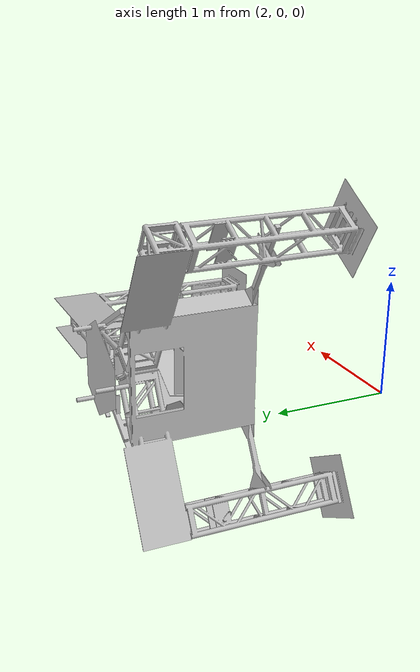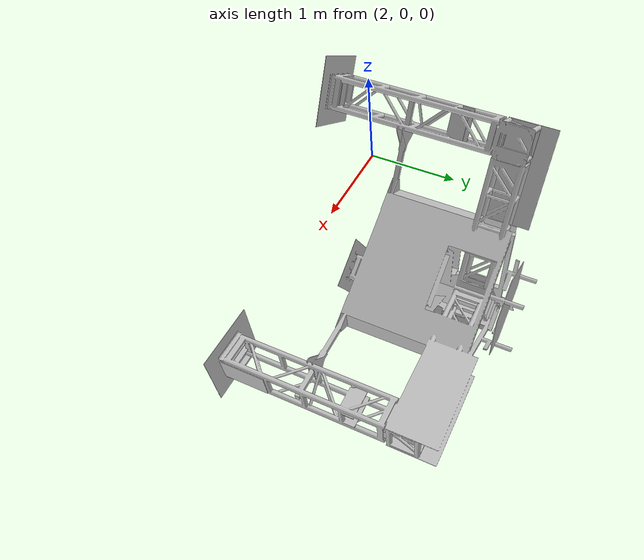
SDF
<?xml version="1.0" encoding="utf-8"?>
<sdf version="1.5">
  <model name="StageDF">
    <pose>0 0 0 0 0 0</pose>

    <link name="Body">
      <gravity>1</gravity>
      <self_collide>0</self_collide>
      <pose>3.41866966331912 1.28555950831927 -4.49039309301697E-05 0 0 0</pose>
      <must_be_base_link>1</must_be_base_link>
      <velocity_decay>
        <linear>0</linear>
        <angular>0</angular>
      </velocity_decay>
      <inertial>
        <mass>229.201132019243</mass>
        <pose>0 0 0 0 0 0</pose>
        <inertia>
          <ixx>123.388078535741</ixx>
          <ixy>6.8275201419122</ixy>
          <ixz>0.0354480194593931</ixz>
          <iyy>220.472965126754</iyy>
          <iyz>0.0547666220662019</iyz>
          <izz>136.817722560262</izz>
        </inertia>
      </inertial>
      <collision name="Body_collision">
        <pose>-3.41866966331912 -1.28555950831927 4.49039309301697E-05 0 0 0</pose>
        <geometry>
          <mesh>
            <scale>1 1 1</scale>
            <uri>model://StageDF/meshes/Body_col.STL</uri>
          </mesh>
        </geometry>
        <surface>
          <contact>
            <ode />
          </contact>
          <friction>
            <ode>
              <mu>0</mu>
              <mu2>0</mu2>
            </ode>
          </friction>
        </surface>
      </collision>
      <visual name="Body_visual">
        <pose>-3.41866966331912 -1.28555950831927 4.49039309301697E-05 0 0 0</pose>
        <material>
          <ambient>0.752941176470588 0.752941176470588 0.752941176470588 1</ambient>
          <diffuse>0.752941176470588 0.752941176470588 0.752941176470588 1</diffuse>
        </material>
        <geometry>
          <mesh>
            <scale>1 1 1</scale>
            <uri>model://StageDF/meshes/Body.STL</uri>
          </mesh>
        </geometry>
      </visual>
    </link>
     <joint name="Field-World" type="fixed">
      <parent>world</parent>
      <child>Body</child>
   </joint>
  </model>
</sdf>
